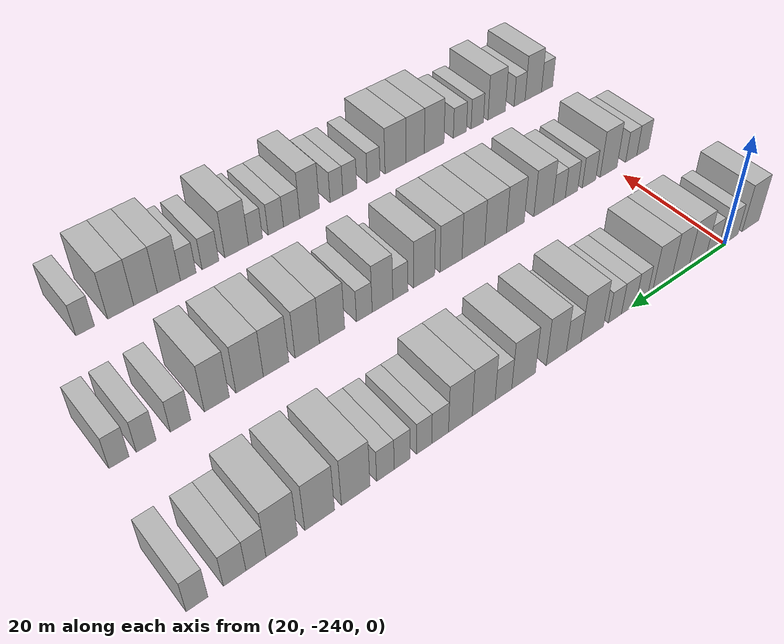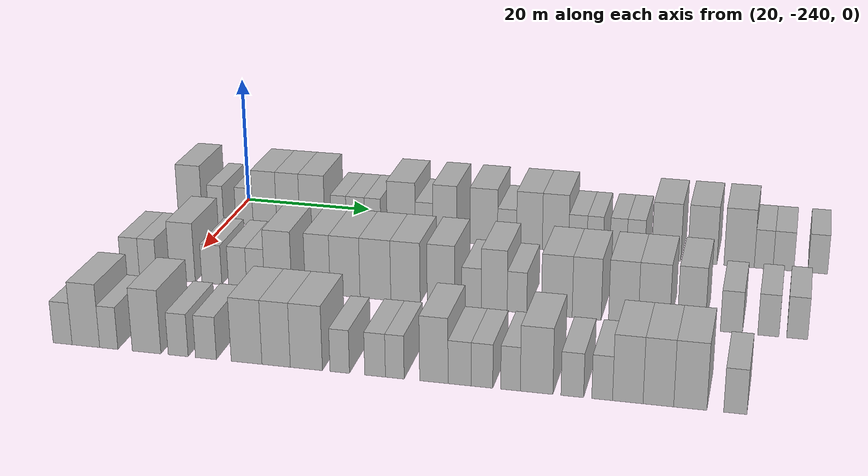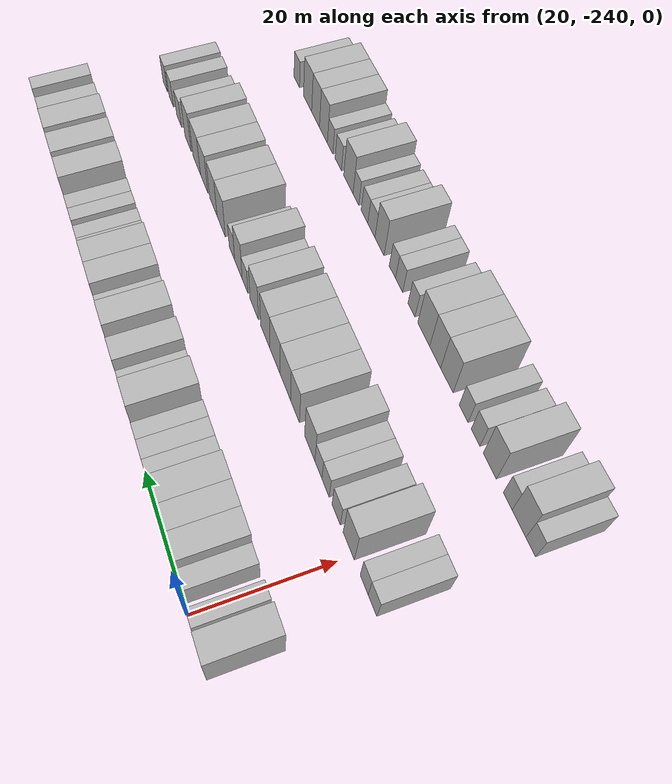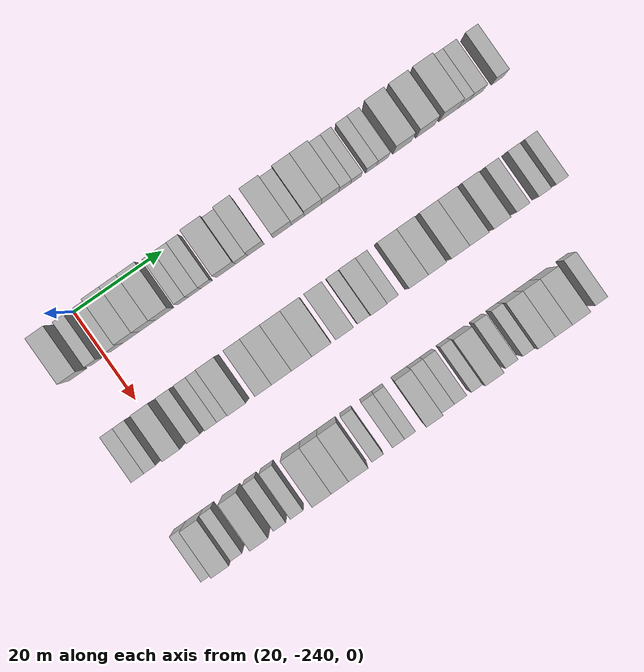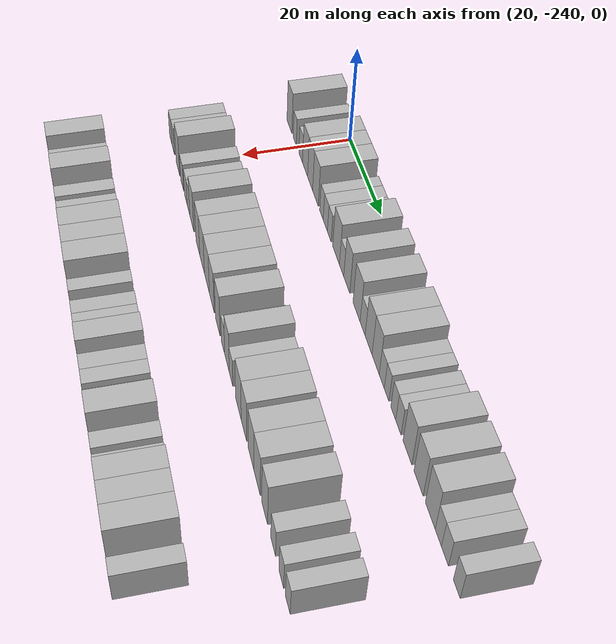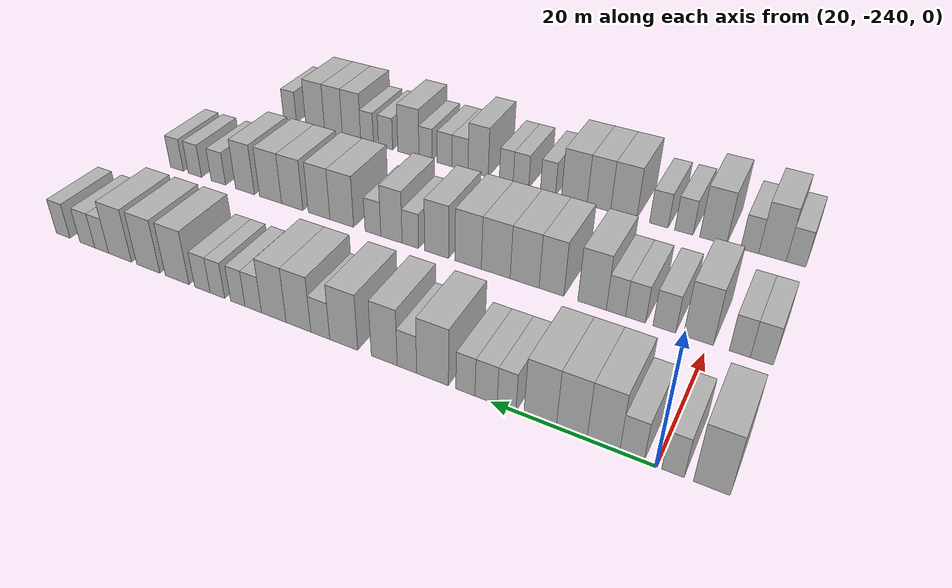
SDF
<sdf version="1.6">
 <world name="default">
  <model name="building_1">
   <static>1</static>
   <pose>25.0000 -246.0256 0 0.000000 0.000000 0.000000</pose>
   <link name="link">
    <pose>0 0 4.50 0 0 0</pose>
    <collision name="collision"><geometry><box><size>10.0000 3.9487 9.0000</size></box></geometry></collision>
    <visual name="visual">
     <cast_shadows>0</cast_shadows>
     <geometry><box><size>10.0000 3.9487 9.0000</size></box></geometry>
     <material>
      <script>
       <uri>model://HANNAS_wall/materials/scripts</uri>
       <uri>model://HANNAS_wall/materials/textures</uri>
       <name>vrc/HANNAS_wall</name>
      </script>
     </material>
    </visual>
   </link>
  </model>
  <model name="building_2">
   <static>1</static>
   <pose>25.0000 -241.8114 0 0.000000 0.000000 0.000000</pose>
   <link name="link">
    <pose>0 0 3.00 0 0 0</pose>
    <collision name="collision"><geometry><box><size>10.0000 2.4798 6.0000</size></box></geometry></collision>
    <visual name="visual">
     <cast_shadows>0</cast_shadows>
     <geometry><box><size>10.0000 2.4798 6.0000</size></box></geometry>
     <material>
      <script>
       <uri>model://HANNAS_wall/materials/scripts</uri>
       <uri>model://HANNAS_wall/materials/textures</uri>
       <name>vrc/HANNAS_wall</name>
      </script>
     </material>
    </visual>
   </link>
  </model>
  <model name="building_3">
   <static>1</static>
   <pose>25.0000 -237.1694 0 0.000000 0.000000 0.000000</pose>
   <link name="link">
    <pose>0 0 3.00 0 0 0</pose>
    <collision name="collision"><geometry><box><size>10.0000 2.8042 6.0000</size></box></geometry></collision>
    <visual name="visual">
     <cast_shadows>0</cast_shadows>
     <geometry><box><size>10.0000 2.8042 6.0000</size></box></geometry>
     <material>
      <script>
       <uri>model://HANNAS_wall/materials/scripts</uri>
       <uri>model://HANNAS_wall/materials/textures</uri>
       <name>vrc/HANNAS_wall</name>
      </script>
     </material>
    </visual>
   </link>
  </model>
  <model name="building_4">
   <static>1</static>
   <pose>25.0000 -233.8526 0 0.000000 0.000000 0.000000</pose>
   <link name="link">
    <pose>0 0 4.50 0 0 0</pose>
    <collision name="collision"><geometry><box><size>10.0000 3.8294 9.0000</size></box></geometry></collision>
    <visual name="visual">
     <cast_shadows>0</cast_shadows>
     <geometry><box><size>10.0000 3.8294 9.0000</size></box></geometry>
     <material>
      <script>
       <uri>model://HANNAS_wall/materials/scripts</uri>
       <uri>model://HANNAS_wall/materials/textures</uri>
       <name>vrc/HANNAS_wall</name>
      </script>
     </material>
    </visual>
   </link>
  </model>
  <model name="building_5">
   <static>1</static>
   <pose>25.0000 -230.0821 0 0.000000 0.000000 0.000000</pose>
   <link name="link">
    <pose>0 0 4.50 0 0 0</pose>
    <collision name="collision"><geometry><box><size>10.0000 3.7115 9.0000</size></box></geometry></collision>
    <visual name="visual">
     <cast_shadows>0</cast_shadows>
     <geometry><box><size>10.0000 3.7115 9.0000</size></box></geometry>
     <material>
      <script>
       <uri>model://HANNAS_wall/materials/scripts</uri>
       <uri>model://HANNAS_wall/materials/textures</uri>
       <name>vrc/HANNAS_wall</name>
      </script>
     </material>
    </visual>
   </link>
  </model>
  <model name="building_6">
   <static>1</static>
   <pose>25.0000 -226.2133 0 0.000000 0.000000 0.000000</pose>
   <link name="link">
    <pose>0 0 4.50 0 0 0</pose>
    <collision name="collision"><geometry><box><size>10.0000 4.0262 9.0000</size></box></geometry></collision>
    <visual name="visual">
     <cast_shadows>0</cast_shadows>
     <geometry><box><size>10.0000 4.0262 9.0000</size></box></geometry>
     <material>
      <script>
       <uri>model://HANNAS_wall/materials/scripts</uri>
       <uri>model://HANNAS_wall/materials/textures</uri>
       <name>vrc/HANNAS_wall</name>
      </script>
     </material>
    </visual>
   </link>
  </model>
  <model name="building_7">
   <static>1</static>
   <pose>25.0000 -221.9935 0 0.000000 0.000000 0.000000</pose>
   <link name="link">
    <pose>0 0 3.00 0 0 0</pose>
    <collision name="collision"><geometry><box><size>10.0000 2.4132 6.0000</size></box></geometry></collision>
    <visual name="visual">
     <cast_shadows>0</cast_shadows>
     <geometry><box><size>10.0000 2.4132 6.0000</size></box></geometry>
     <material>
      <script>
       <uri>model://HANNAS_wall/materials/scripts</uri>
       <uri>model://HANNAS_wall/materials/textures</uri>
       <name>vrc/HANNAS_wall</name>
      </script>
     </material>
    </visual>
   </link>
  </model>
  <model name="building_8">
   <static>1</static>
   <pose>25.0000 -219.3437 0 0.000000 0.000000 0.000000</pose>
   <link name="link">
    <pose>0 0 3.00 0 0 0</pose>
    <collision name="collision"><geometry><box><size>10.0000 2.8865 6.0000</size></box></geometry></collision>
    <visual name="visual">
     <cast_shadows>0</cast_shadows>
     <geometry><box><size>10.0000 2.8865 6.0000</size></box></geometry>
     <material>
      <script>
       <uri>model://HANNAS_wall/materials/scripts</uri>
       <uri>model://HANNAS_wall/materials/textures</uri>
       <name>vrc/HANNAS_wall</name>
      </script>
     </material>
    </visual>
   </link>
  </model>
  <model name="building_9">
   <static>1</static>
   <pose>25.0000 -216.6256 0 0.000000 0.000000 0.000000</pose>
   <link name="link">
    <pose>0 0 3.00 0 0 0</pose>
    <collision name="collision"><geometry><box><size>10.0000 2.5496 6.0000</size></box></geometry></collision>
    <visual name="visual">
     <cast_shadows>0</cast_shadows>
     <geometry><box><size>10.0000 2.5496 6.0000</size></box></geometry>
     <material>
      <script>
       <uri>model://HANNAS_wall/materials/scripts</uri>
       <uri>model://HANNAS_wall/materials/textures</uri>
       <name>vrc/HANNAS_wall</name>
      </script>
     </material>
    </visual>
   </link>
  </model>
  <model name="building_10">
   <static>1</static>
   <pose>25.0000 -212.1598 0 0.000000 0.000000 0.000000</pose>
   <link name="link">
    <pose>0 0 4.50 0 0 0</pose>
    <collision name="collision"><geometry><box><size>10.0000 4.3820 9.0000</size></box></geometry></collision>
    <visual name="visual">
     <cast_shadows>0</cast_shadows>
     <geometry><box><size>10.0000 4.3820 9.0000</size></box></geometry>
     <material>
      <script>
       <uri>model://HANNAS_wall/materials/scripts</uri>
       <uri>model://HANNAS_wall/materials/textures</uri>
       <name>vrc/HANNAS_wall</name>
      </script>
     </material>
    </visual>
   </link>
  </model>
  <model name="building_11">
   <static>1</static>
   <pose>25.0000 -208.6031 0 0.000000 0.000000 0.000000</pose>
   <link name="link">
    <pose>0 0 3.00 0 0 0</pose>
    <collision name="collision"><geometry><box><size>10.0000 2.7313 6.0000</size></box></geometry></collision>
    <visual name="visual">
     <cast_shadows>0</cast_shadows>
     <geometry><box><size>10.0000 2.7313 6.0000</size></box></geometry>
     <material>
      <script>
       <uri>model://HANNAS_wall/materials/scripts</uri>
       <uri>model://HANNAS_wall/materials/textures</uri>
       <name>vrc/HANNAS_wall</name>
      </script>
     </material>
    </visual>
   </link>
  </model>
  <model name="building_12">
   <static>1</static>
   <pose>25.0000 -205.3724 0 0.000000 0.000000 0.000000</pose>
   <link name="link">
    <pose>0 0 4.50 0 0 0</pose>
    <collision name="collision"><geometry><box><size>10.0000 3.7300 9.0000</size></box></geometry></collision>
    <visual name="visual">
     <cast_shadows>0</cast_shadows>
     <geometry><box><size>10.0000 3.7300 9.0000</size></box></geometry>
     <material>
      <script>
       <uri>model://HANNAS_wall/materials/scripts</uri>
       <uri>model://HANNAS_wall/materials/textures</uri>
       <name>vrc/HANNAS_wall</name>
      </script>
     </material>
    </visual>
   </link>
  </model>
  <model name="building_13">
   <static>1</static>
   <pose>25.0000 -199.4030 0 0.000000 0.000000 0.000000</pose>
   <link name="link">
    <pose>0 0 4.50 0 0 0</pose>
    <collision name="collision"><geometry><box><size>10.0000 4.2089 9.0000</size></box></geometry></collision>
    <visual name="visual">
     <cast_shadows>0</cast_shadows>
     <geometry><box><size>10.0000 4.2089 9.0000</size></box></geometry>
     <material>
      <script>
       <uri>model://HANNAS_wall/materials/scripts</uri>
       <uri>model://HANNAS_wall/materials/textures</uri>
       <name>vrc/HANNAS_wall</name>
      </script>
     </material>
    </visual>
   </link>
  </model>
  <model name="building_14">
   <static>1</static>
   <pose>25.0000 -195.8480 0 0.000000 0.000000 0.000000</pose>
   <link name="link">
    <pose>0 0 3.00 0 0 0</pose>
    <collision name="collision"><geometry><box><size>10.0000 2.9011 6.0000</size></box></geometry></collision>
    <visual name="visual">
     <cast_shadows>0</cast_shadows>
     <geometry><box><size>10.0000 2.9011 6.0000</size></box></geometry>
     <material>
      <script>
       <uri>model://HANNAS_wall/materials/scripts</uri>
       <uri>model://HANNAS_wall/materials/textures</uri>
       <name>vrc/HANNAS_wall</name>
      </script>
     </material>
    </visual>
   </link>
  </model>
  <model name="building_15">
   <static>1</static>
   <pose>25.0000 -192.4488 0 0.000000 0.000000 0.000000</pose>
   <link name="link">
    <pose>0 0 4.50 0 0 0</pose>
    <collision name="collision"><geometry><box><size>10.0000 3.8974 9.0000</size></box></geometry></collision>
    <visual name="visual">
     <cast_shadows>0</cast_shadows>
     <geometry><box><size>10.0000 3.8974 9.0000</size></box></geometry>
     <material>
      <script>
       <uri>model://HANNAS_wall/materials/scripts</uri>
       <uri>model://HANNAS_wall/materials/textures</uri>
       <name>vrc/HANNAS_wall</name>
      </script>
     </material>
    </visual>
   </link>
  </model>
  <model name="building_16">
   <static>1</static>
   <pose>25.0000 -188.5195 0 0.000000 0.000000 0.000000</pose>
   <link name="link">
    <pose>0 0 4.50 0 0 0</pose>
    <collision name="collision"><geometry><box><size>10.0000 3.9612 9.0000</size></box></geometry></collision>
    <visual name="visual">
     <cast_shadows>0</cast_shadows>
     <geometry><box><size>10.0000 3.9612 9.0000</size></box></geometry>
     <material>
      <script>
       <uri>model://HANNAS_wall/materials/scripts</uri>
       <uri>model://HANNAS_wall/materials/textures</uri>
       <name>vrc/HANNAS_wall</name>
      </script>
     </material>
    </visual>
   </link>
  </model>
  <model name="building_17">
   <static>1</static>
   <pose>25.0000 -185.1757 0 0.000000 0.000000 0.000000</pose>
   <link name="link">
    <pose>0 0 3.00 0 0 0</pose>
    <collision name="collision"><geometry><box><size>10.0000 2.7264 6.0000</size></box></geometry></collision>
    <visual name="visual">
     <cast_shadows>0</cast_shadows>
     <geometry><box><size>10.0000 2.7264 6.0000</size></box></geometry>
     <material>
      <script>
       <uri>model://HANNAS_wall/materials/scripts</uri>
       <uri>model://HANNAS_wall/materials/textures</uri>
       <name>vrc/HANNAS_wall</name>
      </script>
     </material>
    </visual>
   </link>
  </model>
  <model name="building_18">
   <static>1</static>
   <pose>25.0000 -182.6045 0 0.000000 0.000000 0.000000</pose>
   <link name="link">
    <pose>0 0 3.00 0 0 0</pose>
    <collision name="collision"><geometry><box><size>10.0000 2.4160 6.0000</size></box></geometry></collision>
    <visual name="visual">
     <cast_shadows>0</cast_shadows>
     <geometry><box><size>10.0000 2.4160 6.0000</size></box></geometry>
     <material>
      <script>
       <uri>model://HANNAS_wall/materials/scripts</uri>
       <uri>model://HANNAS_wall/materials/textures</uri>
       <name>vrc/HANNAS_wall</name>
      </script>
     </material>
    </visual>
   </link>
  </model>
  <model name="building_19">
   <static>1</static>
   <pose>25.0000 -179.1431 0 0.000000 0.000000 0.000000</pose>
   <link name="link">
    <pose>0 0 3.00 0 0 0</pose>
    <collision name="collision"><geometry><box><size>10.0000 2.5067 6.0000</size></box></geometry></collision>
    <visual name="visual">
     <cast_shadows>0</cast_shadows>
     <geometry><box><size>10.0000 2.5067 6.0000</size></box></geometry>
     <material>
      <script>
       <uri>model://HANNAS_wall/materials/scripts</uri>
       <uri>model://HANNAS_wall/materials/textures</uri>
       <name>vrc/HANNAS_wall</name>
      </script>
     </material>
    </visual>
   </link>
  </model>
  <model name="building_20">
   <static>1</static>
   <pose>25.0000 -176.5462 0 0.000000 0.000000 0.000000</pose>
   <link name="link">
    <pose>0 0 3.00 0 0 0</pose>
    <collision name="collision"><geometry><box><size>10.0000 2.6870 6.0000</size></box></geometry></collision>
    <visual name="visual">
     <cast_shadows>0</cast_shadows>
     <geometry><box><size>10.0000 2.6870 6.0000</size></box></geometry>
     <material>
      <script>
       <uri>model://HANNAS_wall/materials/scripts</uri>
       <uri>model://HANNAS_wall/materials/textures</uri>
       <name>vrc/HANNAS_wall</name>
      </script>
     </material>
    </visual>
   </link>
  </model>
  <model name="building_21">
   <static>1</static>
   <pose>25.0000 -172.0759 0 0.000000 0.000000 0.000000</pose>
   <link name="link">
    <pose>0 0 4.50 0 0 0</pose>
    <collision name="collision"><geometry><box><size>10.0000 4.2536 9.0000</size></box></geometry></collision>
    <visual name="visual">
     <cast_shadows>0</cast_shadows>
     <geometry><box><size>10.0000 4.2536 9.0000</size></box></geometry>
     <material>
      <script>
       <uri>model://HANNAS_wall/materials/scripts</uri>
       <uri>model://HANNAS_wall/materials/textures</uri>
       <name>vrc/HANNAS_wall</name>
      </script>
     </material>
    </visual>
   </link>
  </model>
  <model name="building_22">
   <static>1</static>
   <pose>25.0000 -166.8171 0 0.000000 0.000000 0.000000</pose>
   <link name="link">
    <pose>0 0 4.50 0 0 0</pose>
    <collision name="collision"><geometry><box><size>10.0000 4.2640 9.0000</size></box></geometry></collision>
    <visual name="visual">
     <cast_shadows>0</cast_shadows>
     <geometry><box><size>10.0000 4.2640 9.0000</size></box></geometry>
     <material>
      <script>
       <uri>model://HANNAS_wall/materials/scripts</uri>
       <uri>model://HANNAS_wall/materials/textures</uri>
       <name>vrc/HANNAS_wall</name>
      </script>
     </material>
    </visual>
   </link>
  </model>
  <model name="building_23">
   <static>1</static>
   <pose>25.0000 -161.5045 0 0.000000 0.000000 0.000000</pose>
   <link name="link">
    <pose>0 0 4.50 0 0 0</pose>
    <collision name="collision"><geometry><box><size>10.0000 4.3612 9.0000</size></box></geometry></collision>
    <visual name="visual">
     <cast_shadows>0</cast_shadows>
     <geometry><box><size>10.0000 4.3612 9.0000</size></box></geometry>
     <material>
      <script>
       <uri>model://HANNAS_wall/materials/scripts</uri>
       <uri>model://HANNAS_wall/materials/textures</uri>
       <name>vrc/HANNAS_wall</name>
      </script>
     </material>
    </visual>
   </link>
  </model>
  <model name="building_24">
   <static>1</static>
   <pose>25.0000 -157.9788 0 0.000000 0.000000 0.000000</pose>
   <link name="link">
    <pose>0 0 3.00 0 0 0</pose>
    <collision name="collision"><geometry><box><size>10.0000 2.6903 6.0000</size></box></geometry></collision>
    <visual name="visual">
     <cast_shadows>0</cast_shadows>
     <geometry><box><size>10.0000 2.6903 6.0000</size></box></geometry>
     <material>
      <script>
       <uri>model://HANNAS_wall/materials/scripts</uri>
       <uri>model://HANNAS_wall/materials/textures</uri>
       <name>vrc/HANNAS_wall</name>
      </script>
     </material>
    </visual>
   </link>
  </model>
  <model name="building_25">
   <static>1</static>
   <pose>25.0000 -155.1481 0 0.000000 0.000000 0.000000</pose>
   <link name="link">
    <pose>0 0 3.00 0 0 0</pose>
    <collision name="collision"><geometry><box><size>10.0000 2.9709 6.0000</size></box></geometry></collision>
    <visual name="visual">
     <cast_shadows>0</cast_shadows>
     <geometry><box><size>10.0000 2.9709 6.0000</size></box></geometry>
     <material>
      <script>
       <uri>model://HANNAS_wall/materials/scripts</uri>
       <uri>model://HANNAS_wall/materials/textures</uri>
       <name>vrc/HANNAS_wall</name>
      </script>
     </material>
    </visual>
   </link>
  </model>
  <model name="building_26">
   <static>1</static>
   <pose>25.0000 -150.2772 0 0.000000 0.000000 0.000000</pose>
   <link name="link">
    <pose>0 0 3.00 0 0 0</pose>
    <collision name="collision"><geometry><box><size>10.0000 2.7709 6.0000</size></box></geometry></collision>
    <visual name="visual">
     <cast_shadows>0</cast_shadows>
     <geometry><box><size>10.0000 2.7709 6.0000</size></box></geometry>
     <material>
      <script>
       <uri>model://HANNAS_wall/materials/scripts</uri>
       <uri>model://HANNAS_wall/materials/textures</uri>
       <name>vrc/HANNAS_wall</name>
      </script>
     </material>
    </visual>
   </link>
  </model>
  <model name="building_120">
   <static>1</static>
   <pose>47.0000 -246.5973 0 0.000000 0.000000 0.000000</pose>
   <link name="link">
    <pose>0 0 3.00 0 0 0</pose>
    <collision name="collision"><geometry><box><size>10.0000 2.8053 6.0000</size></box></geometry></collision>
    <visual name="visual">
     <cast_shadows>0</cast_shadows>
     <geometry><box><size>10.0000 2.8053 6.0000</size></box></geometry>
     <material>
      <script>
       <uri>model://HANNAS_wall/materials/scripts</uri>
       <uri>model://HANNAS_wall/materials/textures</uri>
       <name>vrc/HANNAS_wall</name>
      </script>
     </material>
    </visual>
   </link>
  </model>
  <model name="building_121">
   <static>1</static>
   <pose>47.0000 -243.8879 0 0.000000 0.000000 0.000000</pose>
   <link name="link">
    <pose>0 0 3.00 0 0 0</pose>
    <collision name="collision"><geometry><box><size>10.0000 2.6136 6.0000</size></box></geometry></collision>
    <visual name="visual">
     <cast_shadows>0</cast_shadows>
     <geometry><box><size>10.0000 2.6136 6.0000</size></box></geometry>
     <material>
      <script>
       <uri>model://HANNAS_wall/materials/scripts</uri>
       <uri>model://HANNAS_wall/materials/textures</uri>
       <name>vrc/HANNAS_wall</name>
      </script>
     </material>
    </visual>
   </link>
  </model>
  <model name="building_122">
   <static>1</static>
   <pose>47.0000 -238.6606 0 0.000000 0.000000 0.000000</pose>
   <link name="link">
    <pose>0 0 4.50 0 0 0</pose>
    <collision name="collision"><geometry><box><size>10.0000 3.8409 9.0000</size></box></geometry></collision>
    <visual name="visual">
     <cast_shadows>0</cast_shadows>
     <geometry><box><size>10.0000 3.8409 9.0000</size></box></geometry>
     <material>
      <script>
       <uri>model://HANNAS_wall/materials/scripts</uri>
       <uri>model://HANNAS_wall/materials/textures</uri>
       <name>vrc/HANNAS_wall</name>
      </script>
     </material>
    </visual>
   </link>
  </model>
  <model name="building_123">
   <static>1</static>
   <pose>47.0000 -234.2449 0 0.000000 0.000000 0.000000</pose>
   <link name="link">
    <pose>0 0 3.00 0 0 0</pose>
    <collision name="collision"><geometry><box><size>10.0000 2.9906 6.0000</size></box></geometry></collision>
    <visual name="visual">
     <cast_shadows>0</cast_shadows>
     <geometry><box><size>10.0000 2.9906 6.0000</size></box></geometry>
     <material>
      <script>
       <uri>model://HANNAS_wall/materials/scripts</uri>
       <uri>model://HANNAS_wall/materials/textures</uri>
       <name>vrc/HANNAS_wall</name>
      </script>
     </material>
    </visual>
   </link>
  </model>
  <model name="building_124">
   <static>1</static>
   <pose>47.0000 -230.3975 0 0.000000 0.000000 0.000000</pose>
   <link name="link">
    <pose>0 0 3.00 0 0 0</pose>
    <collision name="collision"><geometry><box><size>10.0000 2.7042 6.0000</size></box></geometry></collision>
    <visual name="visual">
     <cast_shadows>0</cast_shadows>
     <geometry><box><size>10.0000 2.7042 6.0000</size></box></geometry>
     <material>
      <script>
       <uri>model://HANNAS_wall/materials/scripts</uri>
       <uri>model://HANNAS_wall/materials/textures</uri>
       <name>vrc/HANNAS_wall</name>
      </script>
     </material>
    </visual>
   </link>
  </model>
  <model name="building_125">
   <static>1</static>
   <pose>47.0000 -227.7187 0 0.000000 0.000000 0.000000</pose>
   <link name="link">
    <pose>0 0 3.00 0 0 0</pose>
    <collision name="collision"><geometry><box><size>10.0000 2.6535 6.0000</size></box></geometry></collision>
    <visual name="visual">
     <cast_shadows>0</cast_shadows>
     <geometry><box><size>10.0000 2.6535 6.0000</size></box></geometry>
     <material>
      <script>
       <uri>model://HANNAS_wall/materials/scripts</uri>
       <uri>model://HANNAS_wall/materials/textures</uri>
       <name>vrc/HANNAS_wall</name>
      </script>
     </material>
    </visual>
   </link>
  </model>
  <model name="building_126">
   <static>1</static>
   <pose>47.0000 -224.3856 0 0.000000 0.000000 0.000000</pose>
   <link name="link">
    <pose>0 0 4.50 0 0 0</pose>
    <collision name="collision"><geometry><box><size>10.0000 4.0126 9.0000</size></box></geometry></collision>
    <visual name="visual">
     <cast_shadows>0</cast_shadows>
     <geometry><box><size>10.0000 4.0126 9.0000</size></box></geometry>
     <material>
      <script>
       <uri>model://HANNAS_wall/materials/scripts</uri>
       <uri>model://HANNAS_wall/materials/textures</uri>
       <name>vrc/HANNAS_wall</name>
      </script>
     </material>
    </visual>
   </link>
  </model>
  <model name="building_127">
   <static>1</static>
   <pose>47.0000 -218.5664 0 0.000000 0.000000 0.000000</pose>
   <link name="link">
    <pose>0 0 4.50 0 0 0</pose>
    <collision name="collision"><geometry><box><size>10.0000 3.6259 9.0000</size></box></geometry></collision>
    <visual name="visual">
     <cast_shadows>0</cast_shadows>
     <geometry><box><size>10.0000 3.6259 9.0000</size></box></geometry>
     <material>
      <script>
       <uri>model://HANNAS_wall/materials/scripts</uri>
       <uri>model://HANNAS_wall/materials/textures</uri>
       <name>vrc/HANNAS_wall</name>
      </script>
     </material>
    </visual>
   </link>
  </model>
  <model name="building_128">
   <static>1</static>
   <pose>47.0000 -214.5919 0 0.000000 0.000000 0.000000</pose>
   <link name="link">
    <pose>0 0 4.50 0 0 0</pose>
    <collision name="collision"><geometry><box><size>10.0000 4.3229 9.0000</size></box></geometry></collision>
    <visual name="visual">
     <cast_shadows>0</cast_shadows>
     <geometry><box><size>10.0000 4.3229 9.0000</size></box></geometry>
     <material>
      <script>
       <uri>model://HANNAS_wall/materials/scripts</uri>
       <uri>model://HANNAS_wall/materials/textures</uri>
       <name>vrc/HANNAS_wall</name>
      </script>
     </material>
    </visual>
   </link>
  </model>
  <model name="building_129">
   <static>1</static>
   <pose>47.0000 -210.2173 0 0.000000 0.000000 0.000000</pose>
   <link name="link">
    <pose>0 0 4.50 0 0 0</pose>
    <collision name="collision"><geometry><box><size>10.0000 4.4264 9.0000</size></box></geometry></collision>
    <visual name="visual">
     <cast_shadows>0</cast_shadows>
     <geometry><box><size>10.0000 4.4264 9.0000</size></box></geometry>
     <material>
      <script>
       <uri>model://HANNAS_wall/materials/scripts</uri>
       <uri>model://HANNAS_wall/materials/textures</uri>
       <name>vrc/HANNAS_wall</name>
      </script>
     </material>
    </visual>
   </link>
  </model>
  <model name="building_130">
   <static>1</static>
   <pose>47.0000 -205.9118 0 0.000000 0.000000 0.000000</pose>
   <link name="link">
    <pose>0 0 4.50 0 0 0</pose>
    <collision name="collision"><geometry><box><size>10.0000 4.1845 9.0000</size></box></geometry></collision>
    <visual name="visual">
     <cast_shadows>0</cast_shadows>
     <geometry><box><size>10.0000 4.1845 9.0000</size></box></geometry>
     <material>
      <script>
       <uri>model://HANNAS_wall/materials/scripts</uri>
       <uri>model://HANNAS_wall/materials/textures</uri>
       <name>vrc/HANNAS_wall</name>
      </script>
     </material>
    </visual>
   </link>
  </model>
  <model name="building_131">
   <static>1</static>
   <pose>47.0000 -200.8740 0 0.000000 0.000000 0.000000</pose>
   <link name="link">
    <pose>0 0 4.50 0 0 0</pose>
    <collision name="collision"><geometry><box><size>10.0000 3.8911 9.0000</size></box></geometry></collision>
    <visual name="visual">
     <cast_shadows>0</cast_shadows>
     <geometry><box><size>10.0000 3.8911 9.0000</size></box></geometry>
     <material>
      <script>
       <uri>model://HANNAS_wall/materials/scripts</uri>
       <uri>model://HANNAS_wall/materials/textures</uri>
       <name>vrc/HANNAS_wall</name>
      </script>
     </material>
    </visual>
   </link>
  </model>
  <model name="building_132">
   <static>1</static>
   <pose>47.0000 -196.5638 0 0.000000 0.000000 0.000000</pose>
   <link name="link">
    <pose>0 0 3.00 0 0 0</pose>
    <collision name="collision"><geometry><box><size>10.0000 2.7294 6.0000</size></box></geometry></collision>
    <visual name="visual">
     <cast_shadows>0</cast_shadows>
     <geometry><box><size>10.0000 2.7294 6.0000</size></box></geometry>
     <material>
      <script>
       <uri>model://HANNAS_wall/materials/scripts</uri>
       <uri>model://HANNAS_wall/materials/textures</uri>
       <name>vrc/HANNAS_wall</name>
      </script>
     </material>
    </visual>
   </link>
  </model>
  <model name="building_133">
   <static>1</static>
   <pose>47.0000 -193.3882 0 0.000000 0.000000 0.000000</pose>
   <link name="link">
    <pose>0 0 4.50 0 0 0</pose>
    <collision name="collision"><geometry><box><size>10.0000 3.6219 9.0000</size></box></geometry></collision>
    <visual name="visual">
     <cast_shadows>0</cast_shadows>
     <geometry><box><size>10.0000 3.6219 9.0000</size></box></geometry>
     <material>
      <script>
       <uri>model://HANNAS_wall/materials/scripts</uri>
       <uri>model://HANNAS_wall/materials/textures</uri>
       <name>vrc/HANNAS_wall</name>
      </script>
     </material>
    </visual>
   </link>
  </model>
  <model name="building_134">
   <static>1</static>
   <pose>47.0000 -190.2150 0 0.000000 0.000000 0.000000</pose>
   <link name="link">
    <pose>0 0 3.00 0 0 0</pose>
    <collision name="collision"><geometry><box><size>10.0000 2.7245 6.0000</size></box></geometry></collision>
    <visual name="visual">
     <cast_shadows>0</cast_shadows>
     <geometry><box><size>10.0000 2.7245 6.0000</size></box></geometry>
     <material>
      <script>
       <uri>model://HANNAS_wall/materials/scripts</uri>
       <uri>model://HANNAS_wall/materials/textures</uri>
       <name>vrc/HANNAS_wall</name>
      </script>
     </material>
    </visual>
   </link>
  </model>
  <model name="building_135">
   <static>1</static>
   <pose>47.0000 -184.7335 0 0.000000 0.000000 0.000000</pose>
   <link name="link">
    <pose>0 0 4.50 0 0 0</pose>
    <collision name="collision"><geometry><box><size>10.0000 4.2385 9.0000</size></box></geometry></collision>
    <visual name="visual">
     <cast_shadows>0</cast_shadows>
     <geometry><box><size>10.0000 4.2385 9.0000</size></box></geometry>
     <material>
      <script>
       <uri>model://HANNAS_wall/materials/scripts</uri>
       <uri>model://HANNAS_wall/materials/textures</uri>
       <name>vrc/HANNAS_wall</name>
      </script>
     </material>
    </visual>
   </link>
  </model>
  <model name="building_136">
   <static>1</static>
   <pose>47.0000 -180.6348 0 0.000000 0.000000 0.000000</pose>
   <link name="link">
    <pose>0 0 4.50 0 0 0</pose>
    <collision name="collision"><geometry><box><size>10.0000 3.9591 9.0000</size></box></geometry></collision>
    <visual name="visual">
     <cast_shadows>0</cast_shadows>
     <geometry><box><size>10.0000 3.9591 9.0000</size></box></geometry>
     <material>
      <script>
       <uri>model://HANNAS_wall/materials/scripts</uri>
       <uri>model://HANNAS_wall/materials/textures</uri>
       <name>vrc/HANNAS_wall</name>
      </script>
     </material>
    </visual>
   </link>
  </model>
  <model name="building_137">
   <static>1</static>
   <pose>47.0000 -175.6432 0 0.000000 0.000000 0.000000</pose>
   <link name="link">
    <pose>0 0 4.50 0 0 0</pose>
    <collision name="collision"><geometry><box><size>10.0000 4.0241 9.0000</size></box></geometry></collision>
    <visual name="visual">
     <cast_shadows>0</cast_shadows>
     <geometry><box><size>10.0000 4.0241 9.0000</size></box></geometry>
     <material>
      <script>
       <uri>model://HANNAS_wall/materials/scripts</uri>
       <uri>model://HANNAS_wall/materials/textures</uri>
       <name>vrc/HANNAS_wall</name>
      </script>
     </material>
    </visual>
   </link>
  </model>
  <model name="building_138">
   <static>1</static>
   <pose>47.0000 -171.5209 0 0.000000 0.000000 0.000000</pose>
   <link name="link">
    <pose>0 0 4.50 0 0 0</pose>
    <collision name="collision"><geometry><box><size>10.0000 4.2204 9.0000</size></box></geometry></collision>
    <visual name="visual">
     <cast_shadows>0</cast_shadows>
     <geometry><box><size>10.0000 4.2204 9.0000</size></box></geometry>
     <material>
      <script>
       <uri>model://HANNAS_wall/materials/scripts</uri>
       <uri>model://HANNAS_wall/materials/textures</uri>
       <name>vrc/HANNAS_wall</name>
      </script>
     </material>
    </visual>
   </link>
  </model>
  <model name="building_139">
   <static>1</static>
   <pose>47.0000 -166.5504 0 0.000000 0.000000 0.000000</pose>
   <link name="link">
    <pose>0 0 4.50 0 0 0</pose>
    <collision name="collision"><geometry><box><size>10.0000 3.7206 9.0000</size></box></geometry></collision>
    <visual name="visual">
     <cast_shadows>0</cast_shadows>
     <geometry><box><size>10.0000 3.7206 9.0000</size></box></geometry>
     <material>
      <script>
       <uri>model://HANNAS_wall/materials/scripts</uri>
       <uri>model://HANNAS_wall/materials/textures</uri>
       <name>vrc/HANNAS_wall</name>
      </script>
     </material>
    </visual>
   </link>
  </model>
  <model name="building_140">
   <static>1</static>
   <pose>47.0000 -161.2259 0 0.000000 0.000000 0.000000</pose>
   <link name="link">
    <pose>0 0 3.00 0 0 0</pose>
    <collision name="collision"><geometry><box><size>10.0000 2.9285 6.0000</size></box></geometry></collision>
    <visual name="visual">
     <cast_shadows>0</cast_shadows>
     <geometry><box><size>10.0000 2.9285 6.0000</size></box></geometry>
     <material>
      <script>
       <uri>model://HANNAS_wall/materials/scripts</uri>
       <uri>model://HANNAS_wall/materials/textures</uri>
       <name>vrc/HANNAS_wall</name>
      </script>
     </material>
    </visual>
   </link>
  </model>
  <model name="building_141">
   <static>1</static>
   <pose>47.0000 -156.3736 0 0.000000 0.000000 0.000000</pose>
   <link name="link">
    <pose>0 0 3.00 0 0 0</pose>
    <collision name="collision"><geometry><box><size>10.0000 2.7760 6.0000</size></box></geometry></collision>
    <visual name="visual">
     <cast_shadows>0</cast_shadows>
     <geometry><box><size>10.0000 2.7760 6.0000</size></box></geometry>
     <material>
      <script>
       <uri>model://HANNAS_wall/materials/scripts</uri>
       <uri>model://HANNAS_wall/materials/textures</uri>
       <name>vrc/HANNAS_wall</name>
      </script>
     </material>
    </visual>
   </link>
  </model>
  <model name="building_142">
   <static>1</static>
   <pose>47.0000 -152.6157 0 0.000000 0.000000 0.000000</pose>
   <link name="link">
    <pose>0 0 3.00 0 0 0</pose>
    <collision name="collision"><geometry><box><size>10.0000 2.7397 6.0000</size></box></geometry></collision>
    <visual name="visual">
     <cast_shadows>0</cast_shadows>
     <geometry><box><size>10.0000 2.7397 6.0000</size></box></geometry>
     <material>
      <script>
       <uri>model://HANNAS_wall/materials/scripts</uri>
       <uri>model://HANNAS_wall/materials/textures</uri>
       <name>vrc/HANNAS_wall</name>
      </script>
     </material>
    </visual>
   </link>
  </model>
  <model name="building_239">
   <static>1</static>
   <pose>69.0000 -246.6633 0 0.000000 0.000000 0.000000</pose>
   <link name="link">
    <pose>0 0 3.00 0 0 0</pose>
    <collision name="collision"><geometry><box><size>10.0000 2.6735 6.0000</size></box></geometry></collision>
    <visual name="visual">
     <cast_shadows>0</cast_shadows>
     <geometry><box><size>10.0000 2.6735 6.0000</size></box></geometry>
     <material>
      <script>
       <uri>model://HANNAS_wall/materials/scripts</uri>
       <uri>model://HANNAS_wall/materials/textures</uri>
       <name>vrc/HANNAS_wall</name>
      </script>
     </material>
    </visual>
   </link>
  </model>
  <model name="building_240">
   <static>1</static>
   <pose>69.0000 -243.3922 0 0.000000 0.000000 0.000000</pose>
   <link name="link">
    <pose>0 0 4.50 0 0 0</pose>
    <collision name="collision"><geometry><box><size>10.0000 3.8687 9.0000</size></box></geometry></collision>
    <visual name="visual">
     <cast_shadows>0</cast_shadows>
     <geometry><box><size>10.0000 3.8687 9.0000</size></box></geometry>
     <material>
      <script>
       <uri>model://HANNAS_wall/materials/scripts</uri>
       <uri>model://HANNAS_wall/materials/textures</uri>
       <name>vrc/HANNAS_wall</name>
      </script>
     </material>
    </visual>
   </link>
  </model>
  <model name="building_241">
   <static>1</static>
   <pose>69.0000 -240.1842 0 0.000000 0.000000 0.000000</pose>
   <link name="link">
    <pose>0 0 3.00 0 0 0</pose>
    <collision name="collision"><geometry><box><size>10.0000 2.5474 6.0000</size></box></geometry></collision>
    <visual name="visual">
     <cast_shadows>0</cast_shadows>
     <geometry><box><size>10.0000 2.5474 6.0000</size></box></geometry>
     <material>
      <script>
       <uri>model://HANNAS_wall/materials/scripts</uri>
       <uri>model://HANNAS_wall/materials/textures</uri>
       <name>vrc/HANNAS_wall</name>
      </script>
     </material>
    </visual>
   </link>
  </model>
  <model name="building_242">
   <static>1</static>
   <pose>69.0000 -234.9322 0 0.000000 0.000000 0.000000</pose>
   <link name="link">
    <pose>0 0 4.50 0 0 0</pose>
    <collision name="collision"><geometry><box><size>10.0000 3.9565 9.0000</size></box></geometry></collision>
    <visual name="visual">
     <cast_shadows>0</cast_shadows>
     <geometry><box><size>10.0000 3.9565 9.0000</size></box></geometry>
     <material>
      <script>
       <uri>model://HANNAS_wall/materials/scripts</uri>
       <uri>model://HANNAS_wall/materials/textures</uri>
       <name>vrc/HANNAS_wall</name>
      </script>
     </material>
    </visual>
   </link>
  </model>
  <model name="building_243">
   <static>1</static>
   <pose>69.0000 -230.5859 0 0.000000 0.000000 0.000000</pose>
   <link name="link">
    <pose>0 0 3.00 0 0 0</pose>
    <collision name="collision"><geometry><box><size>10.0000 2.7361 6.0000</size></box></geometry></collision>
    <visual name="visual">
     <cast_shadows>0</cast_shadows>
     <geometry><box><size>10.0000 2.7361 6.0000</size></box></geometry>
     <material>
      <script>
       <uri>model://HANNAS_wall/materials/scripts</uri>
       <uri>model://HANNAS_wall/materials/textures</uri>
       <name>vrc/HANNAS_wall</name>
      </script>
     </material>
    </visual>
   </link>
  </model>
  <model name="building_244">
   <static>1</static>
   <pose>69.0000 -226.7900 0 0.000000 0.000000 0.000000</pose>
   <link name="link">
    <pose>0 0 3.00 0 0 0</pose>
    <collision name="collision"><geometry><box><size>10.0000 2.8559 6.0000</size></box></geometry></collision>
    <visual name="visual">
     <cast_shadows>0</cast_shadows>
     <geometry><box><size>10.0000 2.8559 6.0000</size></box></geometry>
     <material>
      <script>
       <uri>model://HANNAS_wall/materials/scripts</uri>
       <uri>model://HANNAS_wall/materials/textures</uri>
       <name>vrc/HANNAS_wall</name>
      </script>
     </material>
    </visual>
   </link>
  </model>
  <model name="building_245">
   <static>1</static>
   <pose>69.0000 -221.2894 0 0.000000 0.000000 0.000000</pose>
   <link name="link">
    <pose>0 0 4.50 0 0 0</pose>
    <collision name="collision"><geometry><box><size>10.0000 4.1453 9.0000</size></box></geometry></collision>
    <visual name="visual">
     <cast_shadows>0</cast_shadows>
     <geometry><box><size>10.0000 4.1453 9.0000</size></box></geometry>
     <material>
      <script>
       <uri>model://HANNAS_wall/materials/scripts</uri>
       <uri>model://HANNAS_wall/materials/textures</uri>
       <name>vrc/HANNAS_wall</name>
      </script>
     </material>
    </visual>
   </link>
  </model>
  <model name="building_246">
   <static>1</static>
   <pose>69.0000 -217.3215 0 0.000000 0.000000 0.000000</pose>
   <link name="link">
    <pose>0 0 4.50 0 0 0</pose>
    <collision name="collision"><geometry><box><size>10.0000 3.7905 9.0000</size></box></geometry></collision>
    <visual name="visual">
     <cast_shadows>0</cast_shadows>
     <geometry><box><size>10.0000 3.7905 9.0000</size></box></geometry>
     <material>
      <script>
       <uri>model://HANNAS_wall/materials/scripts</uri>
       <uri>model://HANNAS_wall/materials/textures</uri>
       <name>vrc/HANNAS_wall</name>
      </script>
     </material>
    </visual>
   </link>
  </model>
  <model name="building_247">
   <static>1</static>
   <pose>69.0000 -213.2982 0 0.000000 0.000000 0.000000</pose>
   <link name="link">
    <pose>0 0 4.50 0 0 0</pose>
    <collision name="collision"><geometry><box><size>10.0000 4.2559 9.0000</size></box></geometry></collision>
    <visual name="visual">
     <cast_shadows>0</cast_shadows>
     <geometry><box><size>10.0000 4.2559 9.0000</size></box></geometry>
     <material>
      <script>
       <uri>model://HANNAS_wall/materials/scripts</uri>
       <uri>model://HANNAS_wall/materials/textures</uri>
       <name>vrc/HANNAS_wall</name>
      </script>
     </material>
    </visual>
   </link>
  </model>
  <model name="building_248">
   <static>1</static>
   <pose>69.0000 -208.8912 0 0.000000 0.000000 0.000000</pose>
   <link name="link">
    <pose>0 0 3.00 0 0 0</pose>
    <collision name="collision"><geometry><box><size>10.0000 2.5582 6.0000</size></box></geometry></collision>
    <visual name="visual">
     <cast_shadows>0</cast_shadows>
     <geometry><box><size>10.0000 2.5582 6.0000</size></box></geometry>
     <material>
      <script>
       <uri>model://HANNAS_wall/materials/scripts</uri>
       <uri>model://HANNAS_wall/materials/textures</uri>
       <name>vrc/HANNAS_wall</name>
      </script>
     </material>
    </visual>
   </link>
  </model>
  <model name="building_249">
   <static>1</static>
   <pose>69.0000 -204.2637 0 0.000000 0.000000 0.000000</pose>
   <link name="link">
    <pose>0 0 3.00 0 0 0</pose>
    <collision name="collision"><geometry><box><size>10.0000 2.6968 6.0000</size></box></geometry></collision>
    <visual name="visual">
     <cast_shadows>0</cast_shadows>
     <geometry><box><size>10.0000 2.6968 6.0000</size></box></geometry>
     <material>
      <script>
       <uri>model://HANNAS_wall/materials/scripts</uri>
       <uri>model://HANNAS_wall/materials/textures</uri>
       <name>vrc/HANNAS_wall</name>
      </script>
     </material>
    </visual>
   </link>
  </model>
  <model name="building_250">
   <static>1</static>
   <pose>69.0000 -201.7025 0 0.000000 0.000000 0.000000</pose>
   <link name="link">
    <pose>0 0 3.00 0 0 0</pose>
    <collision name="collision"><geometry><box><size>10.0000 2.4257 6.0000</size></box></geometry></collision>
    <visual name="visual">
     <cast_shadows>0</cast_shadows>
     <geometry><box><size>10.0000 2.4257 6.0000</size></box></geometry>
     <material>
      <script>
       <uri>model://HANNAS_wall/materials/scripts</uri>
       <uri>model://HANNAS_wall/materials/textures</uri>
       <name>vrc/HANNAS_wall</name>
      </script>
     </material>
    </visual>
   </link>
  </model>
  <model name="building_251">
   <static>1</static>
   <pose>69.0000 -196.6645 0 0.000000 0.000000 0.000000</pose>
   <link name="link">
    <pose>0 0 4.50 0 0 0</pose>
    <collision name="collision"><geometry><box><size>10.0000 3.6504 9.0000</size></box></geometry></collision>
    <visual name="visual">
     <cast_shadows>0</cast_shadows>
     <geometry><box><size>10.0000 3.6504 9.0000</size></box></geometry>
     <material>
      <script>
       <uri>model://HANNAS_wall/materials/scripts</uri>
       <uri>model://HANNAS_wall/materials/textures</uri>
       <name>vrc/HANNAS_wall</name>
      </script>
     </material>
    </visual>
   </link>
  </model>
  <model name="building_252">
   <static>1</static>
   <pose>69.0000 -193.3683 0 0.000000 0.000000 0.000000</pose>
   <link name="link">
    <pose>0 0 3.00 0 0 0</pose>
    <collision name="collision"><geometry><box><size>10.0000 2.9419 6.0000</size></box></geometry></collision>
    <visual name="visual">
     <cast_shadows>0</cast_shadows>
     <geometry><box><size>10.0000 2.9419 6.0000</size></box></geometry>
     <material>
      <script>
       <uri>model://HANNAS_wall/materials/scripts</uri>
       <uri>model://HANNAS_wall/materials/textures</uri>
       <name>vrc/HANNAS_wall</name>
      </script>
     </material>
    </visual>
   </link>
  </model>
  <model name="building_253">
   <static>1</static>
   <pose>69.0000 -190.5228 0 0.000000 0.000000 0.000000</pose>
   <link name="link">
    <pose>0 0 3.00 0 0 0</pose>
    <collision name="collision"><geometry><box><size>10.0000 2.7490 6.0000</size></box></geometry></collision>
    <visual name="visual">
     <cast_shadows>0</cast_shadows>
     <geometry><box><size>10.0000 2.7490 6.0000</size></box></geometry>
     <material>
      <script>
       <uri>model://HANNAS_wall/materials/scripts</uri>
       <uri>model://HANNAS_wall/materials/textures</uri>
       <name>vrc/HANNAS_wall</name>
      </script>
     </material>
    </visual>
   </link>
  </model>
  <model name="building_254">
   <static>1</static>
   <pose>69.0000 -186.9159 0 0.000000 0.000000 0.000000</pose>
   <link name="link">
    <pose>0 0 3.00 0 0 0</pose>
    <collision name="collision"><geometry><box><size>10.0000 2.4649 6.0000</size></box></geometry></collision>
    <visual name="visual">
     <cast_shadows>0</cast_shadows>
     <geometry><box><size>10.0000 2.4649 6.0000</size></box></geometry>
     <material>
      <script>
       <uri>model://HANNAS_wall/materials/scripts</uri>
       <uri>model://HANNAS_wall/materials/textures</uri>
       <name>vrc/HANNAS_wall</name>
      </script>
     </material>
    </visual>
   </link>
  </model>
  <model name="building_255">
   <static>1</static>
   <pose>69.0000 -183.6418 0 0.000000 0.000000 0.000000</pose>
   <link name="link">
    <pose>0 0 4.50 0 0 0</pose>
    <collision name="collision"><geometry><box><size>10.0000 4.0833 9.0000</size></box></geometry></collision>
    <visual name="visual">
     <cast_shadows>0</cast_shadows>
     <geometry><box><size>10.0000 4.0833 9.0000</size></box></geometry>
     <material>
      <script>
       <uri>model://HANNAS_wall/materials/scripts</uri>
       <uri>model://HANNAS_wall/materials/textures</uri>
       <name>vrc/HANNAS_wall</name>
      </script>
     </material>
    </visual>
   </link>
  </model>
  <model name="building_256">
   <static>1</static>
   <pose>69.0000 -179.1927 0 0.000000 0.000000 0.000000</pose>
   <link name="link">
    <pose>0 0 3.00 0 0 0</pose>
    <collision name="collision"><geometry><box><size>10.0000 2.8148 6.0000</size></box></geometry></collision>
    <visual name="visual">
     <cast_shadows>0</cast_shadows>
     <geometry><box><size>10.0000 2.8148 6.0000</size></box></geometry>
     <material>
      <script>
       <uri>model://HANNAS_wall/materials/scripts</uri>
       <uri>model://HANNAS_wall/materials/textures</uri>
       <name>vrc/HANNAS_wall</name>
      </script>
     </material>
    </visual>
   </link>
  </model>
  <model name="building_257">
   <static>1</static>
   <pose>69.0000 -175.5062 0 0.000000 0.000000 0.000000</pose>
   <link name="link">
    <pose>0 0 3.00 0 0 0</pose>
    <collision name="collision"><geometry><box><size>10.0000 2.5582 6.0000</size></box></geometry></collision>
    <visual name="visual">
     <cast_shadows>0</cast_shadows>
     <geometry><box><size>10.0000 2.5582 6.0000</size></box></geometry>
     <material>
      <script>
       <uri>model://HANNAS_wall/materials/scripts</uri>
       <uri>model://HANNAS_wall/materials/textures</uri>
       <name>vrc/HANNAS_wall</name>
      </script>
     </material>
    </visual>
   </link>
  </model>
  <model name="building_258">
   <static>1</static>
   <pose>69.0000 -172.3601 0 0.000000 0.000000 0.000000</pose>
   <link name="link">
    <pose>0 0 4.50 0 0 0</pose>
    <collision name="collision"><geometry><box><size>10.0000 3.7341 9.0000</size></box></geometry></collision>
    <visual name="visual">
     <cast_shadows>0</cast_shadows>
     <geometry><box><size>10.0000 3.7341 9.0000</size></box></geometry>
     <material>
      <script>
       <uri>model://HANNAS_wall/materials/scripts</uri>
       <uri>model://HANNAS_wall/materials/textures</uri>
       <name>vrc/HANNAS_wall</name>
      </script>
     </material>
    </visual>
   </link>
  </model>
  <model name="building_259">
   <static>1</static>
   <pose>69.0000 -168.6294 0 0.000000 0.000000 0.000000</pose>
   <link name="link">
    <pose>0 0 4.50 0 0 0</pose>
    <collision name="collision"><geometry><box><size>10.0000 3.7271 9.0000</size></box></geometry></collision>
    <visual name="visual">
     <cast_shadows>0</cast_shadows>
     <geometry><box><size>10.0000 3.7271 9.0000</size></box></geometry>
     <material>
      <script>
       <uri>model://HANNAS_wall/materials/scripts</uri>
       <uri>model://HANNAS_wall/materials/textures</uri>
       <name>vrc/HANNAS_wall</name>
      </script>
     </material>
    </visual>
   </link>
  </model>
  <model name="building_260">
   <static>1</static>
   <pose>69.0000 -164.7638 0 0.000000 0.000000 0.000000</pose>
   <link name="link">
    <pose>0 0 4.50 0 0 0</pose>
    <collision name="collision"><geometry><box><size>10.0000 4.0042 9.0000</size></box></geometry></collision>
    <visual name="visual">
     <cast_shadows>0</cast_shadows>
     <geometry><box><size>10.0000 4.0042 9.0000</size></box></geometry>
     <material>
      <script>
       <uri>model://HANNAS_wall/materials/scripts</uri>
       <uri>model://HANNAS_wall/materials/textures</uri>
       <name>vrc/HANNAS_wall</name>
      </script>
     </material>
    </visual>
   </link>
  </model>
  <model name="building_261">
   <static>1</static>
   <pose>69.0000 -159.3689 0 0.000000 0.000000 0.000000</pose>
   <link name="link">
    <pose>0 0 3.00 0 0 0</pose>
    <collision name="collision"><geometry><box><size>10.0000 2.7856 6.0000</size></box></geometry></collision>
    <visual name="visual">
     <cast_shadows>0</cast_shadows>
     <geometry><box><size>10.0000 2.7856 6.0000</size></box></geometry>
     <material>
      <script>
       <uri>model://HANNAS_wall/materials/scripts</uri>
       <uri>model://HANNAS_wall/materials/textures</uri>
       <name>vrc/HANNAS_wall</name>
      </script>
     </material>
    </visual>
   </link>
  </model>
 </world>
</sdf>
